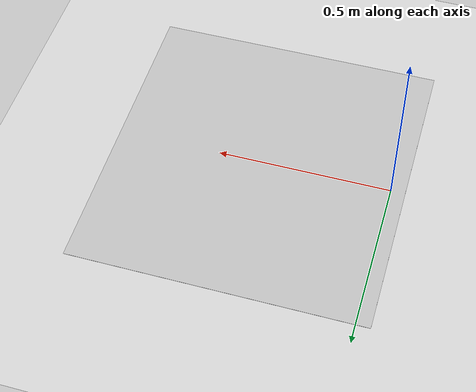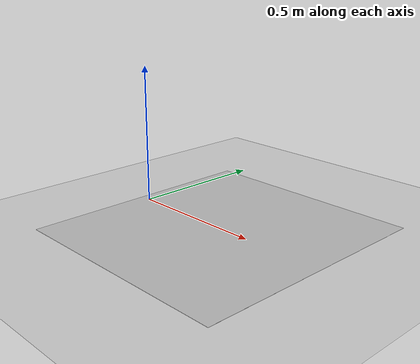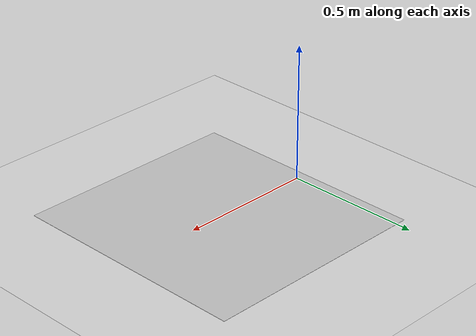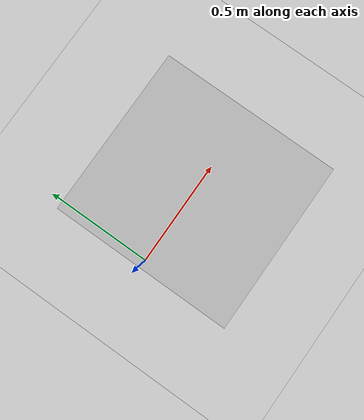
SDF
<?xml version="1.0"?>
<sdf version="1.6">
    <world name="default">
        <light name="sun" type="directional">
            <cast_shadows>1</cast_shadows>
            <diffuse>0.8 0.8 0.8 1</diffuse>
            <specular>0.1 0.1 0.1 1</specular>
            <attenuation>
                <range>1000</range>
                <constant>0.9</constant>
                <linear>0.01</linear>
                <quadratic>0.001</quadratic>
            </attenuation>
            <direction>-0.5 0.5 -1</direction>
        </light>

        <gravity>0 0 -9.8</gravity>

        <scene>
            <ambient>1 1 1 1</ambient>
            <background>0.2 0.0 0.2 1</background>
            <shadows>1</shadows>
            <grid>0</grid>
        </scene>

        <include>
            <uri>model://empty_ground_plane</uri>
            <pose>0 0 -0.001 0 0 0</pose>
        </include>

        <include>
            <uri>model://calib_plane</uri>
            <pose>0.3805 0 0 0 0 -1.5708</pose>
        </include>

    </world>
</sdf>

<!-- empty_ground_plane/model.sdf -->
<sdf version="1.6">
    <model name="empty_ground_plane">
        <static>true</static>
        <link name="link">
            <collision name="collision">
                <geometry>
                    <plane>
                        <normal>0 0 1</normal>
                        <size>100 100</size>
                    </plane>
                </geometry>
                <surface>
                    <friction>
                        <ode>
                            <mu>100</mu>
                            <mu2>50</mu2>
                        </ode>
                    </friction>
                </surface>
            </collision>

            <visual name="visual">
                <cast_shadows>false</cast_shadows>
                <geometry>
                    <plane>
                        <normal>0 0 1</normal>
                        <size>100 100</size>
                    </plane>
                </geometry>
                <material>
                    <script>
                        <uri>model://empty_ground_plane/materials/scripts/</uri>
                        <uri>model://empty_ground_plane/materials/textures</uri>
                        <name>EmptyGroundPlane/Image</name>
                    </script>
                </material>
            </visual>
        </link>
    </model>
</sdf>

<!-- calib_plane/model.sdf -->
<sdf version="1.6">
    <model name="calib_plane">
        <static>true</static>
        <link name="link">
            <collision name="collision">
                <geometry>
                    <plane>
                        <normal>0 0 1</normal>
                        <size>0.891 0.841</size>
                    </plane>
                </geometry>
                <surface>
                    <friction>
                        <ode>
                            <mu>100</mu>
                            <mu2>50</mu2>
                        </ode>
                    </friction>
                </surface>
            </collision>

            <visual name="visual">
                <cast_shadows>false</cast_shadows>
                <geometry>
                    <plane>
                        <normal>0 0 1</normal>
                        <size>0.891 0.841</size>
                    </plane>
                </geometry>
                <material>
                    <script>
                        <uri>model://calib_plane/materials/scripts/</uri>
                        <uri>model://calib_plane/materials/textures</uri>
                        <name>CalibPlane/Image</name>
                    </script>
                </material>
            </visual>
        </link>
    </model>
</sdf>
